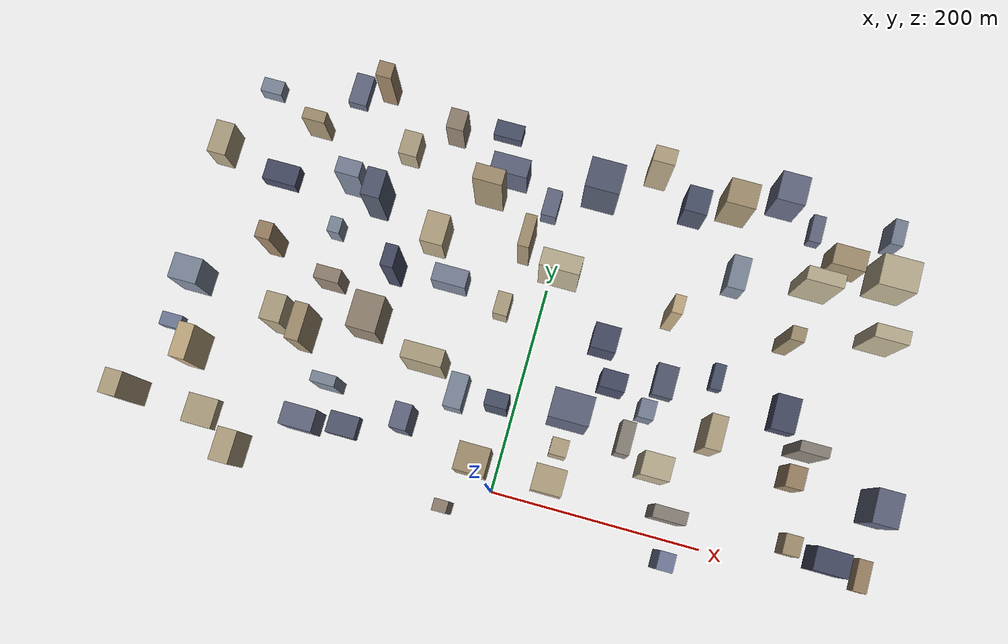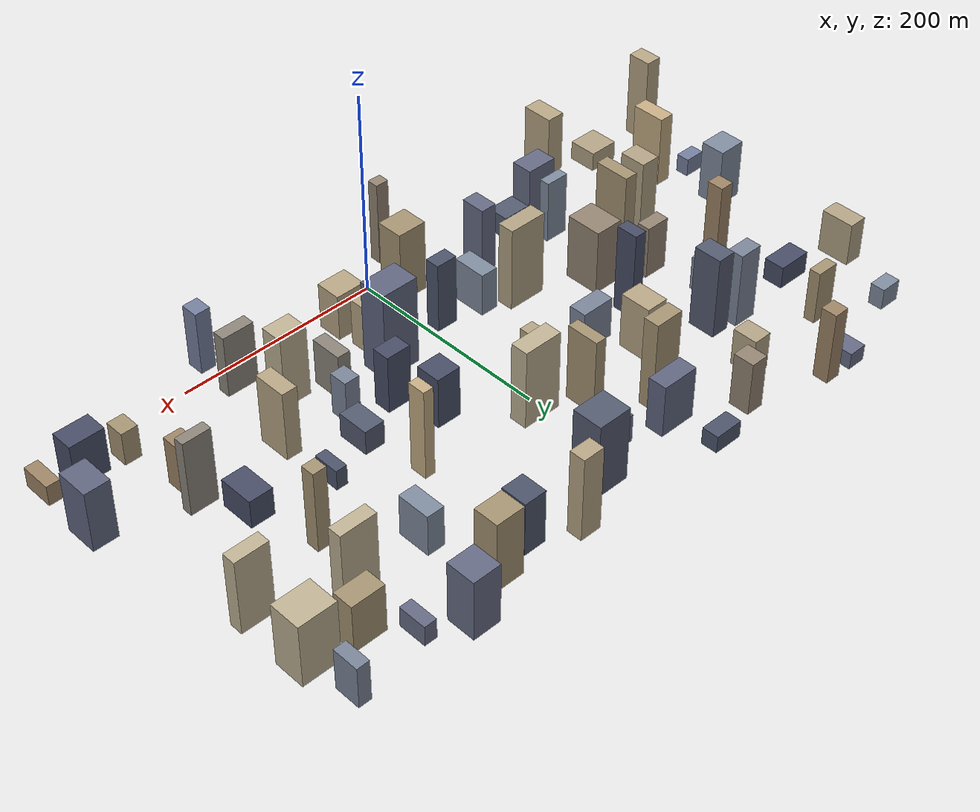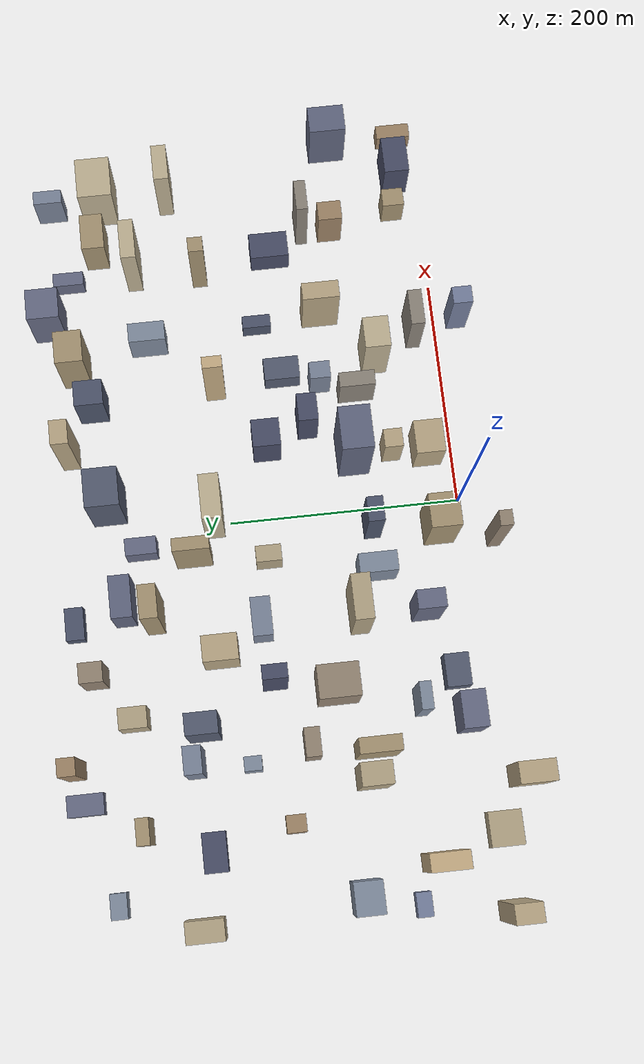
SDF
<sdf version="1.9">
 <model name="city_buildings">
  <static>true</static>
  <model name="b2">
   <static>true</static>
   <pose>160.3 21.6 30.9 0 0 0</pose>
   <link name="link">
    <collision name="c"><geometry><box><size>31 12 62</size></box></geometry></collision>
    <visual name="v">
     <geometry><box><size>31 12 62</size></box></geometry>
     <material>
      <ambient>0.55 0.52 0.48 1</ambient>
      <diffuse>0.55 0.52 0.48 1</diffuse>
      <specular>0.18 0.18 0.16 1</specular>
     </material>
    </visual>
   </link>
  </model>
  <model name="b3">
   <static>true</static>
   <pose>-54.9 79.3 21.5 0 0 0</pose>
   <link name="link">
    <collision name="c"><geometry><box><size>17 33 43</size></box></geometry></collision>
    <visual name="v">
     <geometry><box><size>17 33 43</size></box></geometry>
     <material>
      <ambient>0.50 0.55 0.62 1</ambient>
      <diffuse>0.50 0.55 0.62 1</diffuse>
      <specular>0.45 0.48 0.52 1</specular>
     </material>
    </visual>
   </link>
  </model>
  <model name="b5">
   <static>true</static>
   <pose>312.8 20.1 22.6 0 0 0</pose>
   <link name="link">
    <collision name="c"><geometry><box><size>33 22 45</size></box></geometry></collision>
    <visual name="v">
     <geometry><box><size>33 22 45</size></box></geometry>
     <material>
      <ambient>0.28 0.30 0.40 1</ambient>
      <diffuse>0.28 0.30 0.40 1</diffuse>
      <specular>0.62 0.64 0.68 1</specular>
     </material>
    </visual>
   </link>
  </model>
  <model name="b7">
   <static>true</static>
   <pose>73.9 333.7 42.0 0 0 0</pose>
   <link name="link">
    <collision name="c"><geometry><box><size>21 15 84</size></box></geometry></collision>
    <visual name="v">
     <geometry><box><size>21 15 84</size></box></geometry>
     <material>
      <ambient>0.72 0.65 0.52 1</ambient>
      <diffuse>0.72 0.65 0.52 1</diffuse>
      <specular>0.12 0.10 0.08 1</specular>
     </material>
    </visual>
   </link>
  </model>
  <model name="b11">
   <static>true</static>
   <pose>-209.4 201.1 17.2 0 0 0</pose>
   <link name="link">
    <collision name="c"><geometry><box><size>12 15 34</size></box></geometry></collision>
    <visual name="v">
     <geometry><box><size>12 15 34</size></box></geometry>
     <material>
      <ambient>0.50 0.55 0.62 1</ambient>
      <diffuse>0.50 0.55 0.62 1</diffuse>
      <specular>0.45 0.48 0.52 1</specular>
     </material>
    </visual>
   </link>
  </model>
  <model name="b14">
   <static>true</static>
   <pose>-63.1 296.9 26.2 0 0 0</pose>
   <link name="link">
    <collision name="c"><geometry><box><size>36 18 52</size></box></geometry></collision>
    <visual name="v">
     <geometry><box><size>36 18 52</size></box></geometry>
     <material>
      <ambient>0.38 0.40 0.50 1</ambient>
      <diffuse>0.38 0.40 0.50 1</diffuse>
      <specular>0.52 0.54 0.58 1</specular>
     </material>
    </visual>
   </link>
  </model>
  <model name="b16">
   <static>true</static>
   <pose>-114.3 218.7 27.5 0 0 0</pose>
   <link name="link">
    <collision name="c"><geometry><box><size>22 30 55</size></box></geometry></collision>
    <visual name="v">
     <geometry><box><size>22 30 55</size></box></geometry>
     <material>
      <ambient>0.72 0.65 0.52 1</ambient>
      <diffuse>0.72 0.65 0.52 1</diffuse>
      <specular>0.12 0.10 0.08 1</specular>
     </material>
    </visual>
   </link>
  </model>
  <model name="b17">
   <static>true</static>
   <pose>265.7 296.1 24.1 0 0 0</pose>
   <link name="link">
    <collision name="c"><geometry><box><size>32 20 48</size></box></geometry></collision>
    <visual name="v">
     <geometry><box><size>32 20 48</size></box></geometry>
     <material>
      <ambient>0.65 0.58 0.45 1</ambient>
      <diffuse>0.65 0.58 0.45 1</diffuse>
      <specular>0.10 0.09 0.07 1</specular>
     </material>
    </visual>
   </link>
  </model>
  <model name="b19">
   <static>true</static>
   <pose>-142.5 176.1 43.6 0 0 0</pose>
   <link name="link">
    <collision name="c"><geometry><box><size>12 21 87</size></box></geometry></collision>
    <visual name="v">
     <geometry><box><size>12 21 87</size></box></geometry>
     <material>
      <ambient>0.28 0.30 0.40 1</ambient>
      <diffuse>0.28 0.30 0.40 1</diffuse>
      <specular>0.62 0.64 0.68 1</specular>
     </material>
    </visual>
   </link>
  </model>
  <model name="b21">
   <static>true</static>
   <pose>-152.4 124.8 32.5 0 0 0</pose>
   <link name="link">
    <collision name="c"><geometry><box><size>28 35 65</size></box></geometry></collision>
    <visual name="v">
     <geometry><box><size>28 35 65</size></box></geometry>
     <material>
      <ambient>0.58 0.52 0.45 1</ambient>
      <diffuse>0.58 0.52 0.45 1</diffuse>
      <specular>0.14 0.12 0.10 1</specular>
     </material>
    </visual>
   </link>
  </model>
  <model name="b24">
   <static>true</static>
   <pose>170.1 256.4 20.5 0 0 0</pose>
   <link name="link">
    <collision name="c"><geometry><box><size>17 32 41</size></box></geometry></collision>
    <visual name="v">
     <geometry><box><size>17 32 41</size></box></geometry>
     <material>
      <ambient>0.50 0.55 0.62 1</ambient>
      <diffuse>0.50 0.55 0.62 1</diffuse>
      <specular>0.45 0.48 0.52 1</specular>
     </material>
    </visual>
   </link>
  </model>
  <model name="b25">
   <static>true</static>
   <pose>-347.5 1.2 43.1 0 0 0</pose>
   <link name="link">
    <collision name="c"><geometry><box><size>16 23 86</size></box></geometry></collision>
    <visual name="v">
     <geometry><box><size>16 23 86</size></box></geometry>
     <material>
      <ambient>0.72 0.65 0.52 1</ambient>
      <diffuse>0.72 0.65 0.52 1</diffuse>
      <specular>0.12 0.10 0.08 1</specular>
     </material>
    </visual>
   </link>
  </model>
  <model name="b26">
   <static>true</static>
   <pose>7.8 214.1 39.4 0 0 0</pose>
   <link name="link">
    <collision name="c"><geometry><box><size>38 17 79</size></box></geometry></collision>
    <visual name="v">
     <geometry><box><size>38 17 79</size></box></geometry>
     <material>
      <ambient>0.75 0.70 0.58 1</ambient>
      <diffuse>0.75 0.70 0.58 1</diffuse>
      <specular>0.12 0.11 0.09 1</specular>
     </material>
    </visual>
   </link>
  </model>
  <model name="b27">
   <static>true</static>
   <pose>-22.4 21.7 36.2 0 0 0</pose>
   <link name="link">
    <collision name="c"><geometry><box><size>29 26 72</size></box></geometry></collision>
    <visual name="v">
     <geometry><box><size>29 26 72</size></box></geometry>
     <material>
      <ambient>0.65 0.58 0.45 1</ambient>
      <diffuse>0.65 0.58 0.45 1</diffuse>
      <specular>0.10 0.09 0.07 1</specular>
     </material>
    </visual>
   </link>
  </model>
  <model name="b31">
   <static>true</static>
   <pose>245.2 141.3 14.2 0 0 0</pose>
   <link name="link">
    <collision name="c"><geometry><box><size>23 34 28</size></box></geometry></collision>
    <visual name="v">
     <geometry><box><size>23 34 28</size></box></geometry>
     <material>
      <ambient>0.28 0.30 0.40 1</ambient>
      <diffuse>0.28 0.30 0.40 1</diffuse>
      <specular>0.62 0.64 0.68 1</specular>
     </material>
    </visual>
   </link>
  </model>
  <model name="b33">
   <static>true</static>
   <pose>51.0 88.1 44.3 0 0 0</pose>
   <link name="link">
    <collision name="c"><geometry><box><size>37 27 89</size></box></geometry></collision>
    <visual name="v">
     <geometry><box><size>37 27 89</size></box></geometry>
     <material>
      <ambient>0.38 0.40 0.50 1</ambient>
      <diffuse>0.38 0.40 0.50 1</diffuse>
      <specular>0.52 0.54 0.58 1</specular>
     </material>
    </visual>
   </link>
  </model>
  <model name="b34">
   <static>true</static>
   <pose>348.0 16.2 10.2 0 0 0</pose>
   <link name="link">
    <collision name="c"><geometry><box><size>13 30 20</size></box></geometry></collision>
    <visual name="v">
     <geometry><box><size>13 30 20</size></box></geometry>
     <material>
      <ambient>0.62 0.52 0.40 1</ambient>
      <diffuse>0.62 0.52 0.40 1</diffuse>
      <specular>0.12 0.10 0.08 1</specular>
     </material>
    </visual>
   </link>
  </model>
  <model name="b35">
   <static>true</static>
   <pose>48.7 23.1 23.0 0 0 0</pose>
   <link name="link">
    <collision name="c"><geometry><box><size>29 25 46</size></box></geometry></collision>
    <visual name="v">
     <geometry><box><size>29 25 46</size></box></geometry>
     <material>
      <ambient>0.72 0.65 0.52 1</ambient>
      <diffuse>0.72 0.65 0.52 1</diffuse>
      <specular>0.12 0.10 0.08 1</specular>
     </material>
    </visual>
   </link>
  </model>
  <model name="b36">
   <static>true</static>
   <pose>-254.7 294.0 26.7 0 0 0</pose>
   <link name="link">
    <collision name="c"><geometry><box><size>22 11 53</size></box></geometry></collision>
    <visual name="v">
     <geometry><box><size>22 11 53</size></box></geometry>
     <material>
      <ambient>0.65 0.58 0.45 1</ambient>
      <diffuse>0.65 0.58 0.45 1</diffuse>
      <specular>0.10 0.09 0.07 1</specular>
     </material>
    </visual>
   </link>
  </model>
  <model name="b37">
   <static>true</static>
   <pose>-94.4 41.8 33.8 0 0 0</pose>
   <link name="link">
    <collision name="c"><geometry><box><size>16 24 68</size></box></geometry></collision>
    <visual name="v">
     <geometry><box><size>16 24 68</size></box></geometry>
     <material>
      <ambient>0.40 0.42 0.52 1</ambient>
      <diffuse>0.40 0.42 0.52 1</diffuse>
      <specular>0.50 0.52 0.56 1</specular>
     </material>
    </visual>
   </link>
  </model>
  <model name="b39">
   <static>true</static>
   <pose>181.4 102.6 34.4 0 0 0</pose>
   <link name="link">
    <collision name="c"><geometry><box><size>15 32 69</size></box></geometry></collision>
    <visual name="v">
     <geometry><box><size>15 32 69</size></box></geometry>
     <material>
      <ambient>0.72 0.65 0.52 1</ambient>
      <diffuse>0.72 0.65 0.52 1</diffuse>
      <specular>0.12 0.10 0.08 1</specular>
     </material>
    </visual>
   </link>
  </model>
  <model name="b41">
   <static>true</static>
   <pose>197.9 342.9 30.1 0 0 0</pose>
   <link name="link">
    <collision name="c"><geometry><box><size>27 28 60</size></box></geometry></collision>
    <visual name="v">
     <geometry><box><size>27 28 60</size></box></geometry>
     <material>
      <ambient>0.40 0.42 0.52 1</ambient>
      <diffuse>0.40 0.42 0.52 1</diffuse>
      <specular>0.50 0.52 0.56 1</specular>
     </material>
    </visual>
   </link>
  </model>
  <model name="b46">
   <static>true</static>
   <pose>-171.8 55.8 31.6 0 0 0</pose>
   <link name="link">
    <collision name="c"><geometry><box><size>23 10 63</size></box></geometry></collision>
    <visual name="v">
     <geometry><box><size>23 10 63</size></box></geometry>
     <material>
      <ambient>0.50 0.55 0.62 1</ambient>
      <diffuse>0.50 0.55 0.62 1</diffuse>
      <specular>0.45 0.48 0.52 1</specular>
     </material>
    </visual>
   </link>
  </model>
  <model name="b47">
   <static>true</static>
   <pose>305.9 333.7 20.3 0 0 0</pose>
   <link name="link">
    <collision name="c"><geometry><box><size>12 25 41</size></box></geometry></collision>
    <visual name="v">
     <geometry><box><size>12 25 41</size></box></geometry>
     <material>
      <ambient>0.48 0.52 0.60 1</ambient>
      <diffuse>0.48 0.52 0.60 1</diffuse>
      <specular>0.50 0.52 0.55 1</specular>
     </material>
    </visual>
   </link>
  </model>
  <model name="b48">
   <static>true</static>
   <pose>-15.3 78.6 35.0 0 0 0</pose>
   <link name="link">
    <collision name="c"><geometry><box><size>21 14 70</size></box></geometry></collision>
    <visual name="v">
     <geometry><box><size>21 14 70</size></box></geometry>
     <material>
      <ambient>0.30 0.33 0.42 1</ambient>
      <diffuse>0.30 0.33 0.42 1</diffuse>
      <specular>0.60 0.62 0.65 1</specular>
     </material>
    </visual>
   </link>
  </model>
  <model name="b49">
   <static>true</static>
   <pose>-204.1 248.3 37.5 0 0 0</pose>
   <link name="link">
    <collision name="c"><geometry><box><size>23 15 75</size></box></geometry></collision>
    <visual name="v">
     <geometry><box><size>23 15 75</size></box></geometry>
     <material>
      <ambient>0.48 0.52 0.60 1</ambient>
      <diffuse>0.48 0.52 0.60 1</diffuse>
      <specular>0.50 0.52 0.55 1</specular>
     </material>
    </visual>
   </link>
  </model>
  <model name="b50">
   <static>true</static>
   <pose>-17.2 278.2 13.8 0 0 0</pose>
   <link name="link">
    <collision name="c"><geometry><box><size>15 27 28</size></box></geometry></collision>
    <visual name="v">
     <geometry><box><size>15 27 28</size></box></geometry>
     <material>
      <ambient>0.40 0.42 0.52 1</ambient>
      <diffuse>0.40 0.42 0.52 1</diffuse>
      <specular>0.50 0.52 0.56 1</specular>
     </material>
    </visual>
   </link>
  </model>
  <model name="b51">
   <static>true</static>
   <pose>-185.7 17.1 27.2 0 0 0</pose>
   <link name="link">
    <collision name="c"><geometry><box><size>31 21 54</size></box></geometry></collision>
    <visual name="v">
     <geometry><box><size>31 21 54</size></box></geometry>
     <material>
      <ambient>0.40 0.42 0.52 1</ambient>
      <diffuse>0.40 0.42 0.52 1</diffuse>
      <specular>0.50 0.52 0.56 1</specular>
     </material>
    </visual>
   </link>
  </model>
  <model name="b54">
   <static>true</static>
   <pose>-162.2 296.2 18.6 0 0 0</pose>
   <link name="link">
    <collision name="c"><geometry><box><size>18 24 37</size></box></geometry></collision>
    <visual name="v">
     <geometry><box><size>18 24 37</size></box></geometry>
     <material>
      <ambient>0.70 0.64 0.52 1</ambient>
      <diffuse>0.70 0.64 0.52 1</diffuse>
      <specular>0.13 0.11 0.09 1</specular>
     </material>
    </visual>
   </link>
  </model>
  <model name="b56">
   <static>true</static>
   <pose>-311.0 320.8 10.4 0 0 0</pose>
   <link name="link">
    <collision name="c"><geometry><box><size>21 14 21</size></box></geometry></collision>
    <visual name="v">
     <geometry><box><size>21 14 21</size></box></geometry>
     <material>
      <ambient>0.50 0.55 0.62 1</ambient>
      <diffuse>0.50 0.55 0.62 1</diffuse>
      <specular>0.45 0.48 0.52 1</specular>
     </material>
    </visual>
   </link>
  </model>
  <model name="b60">
   <static>true</static>
   <pose>263.4 84.9 24.2 0 0 0</pose>
   <link name="link">
    <collision name="c"><geometry><box><size>17 21 48</size></box></geometry></collision>
    <visual name="v">
     <geometry><box><size>17 21 48</size></box></geometry>
     <material>
      <ambient>0.62 0.52 0.40 1</ambient>
      <diffuse>0.62 0.52 0.40 1</diffuse>
      <specular>0.12 0.10 0.08 1</specular>
     </material>
    </visual>
   </link>
  </model>
  <model name="b64">
   <static>true</static>
   <pose>268.2 110.4 37.5 0 0 0</pose>
   <link name="link">
    <collision name="c"><geometry><box><size>27 10 75</size></box></geometry></collision>
    <visual name="v">
     <geometry><box><size>27 10 75</size></box></geometry>
     <material>
      <ambient>0.55 0.52 0.48 1</ambient>
      <diffuse>0.55 0.52 0.48 1</diffuse>
      <specular>0.18 0.18 0.16 1</specular>
     </material>
    </visual>
   </link>
  </model>
  <model name="b65">
   <static>true</static>
   <pose>-207.4 98.1 38.6 0 0 0</pose>
   <link name="link">
    <collision name="c"><geometry><box><size>13 35 77</size></box></geometry></collision>
    <visual name="v">
     <geometry><box><size>13 35 77</size></box></geometry>
     <material>
      <ambient>0.65 0.58 0.45 1</ambient>
      <diffuse>0.65 0.58 0.45 1</diffuse>
      <specular>0.10 0.09 0.07 1</specular>
     </material>
    </visual>
   </link>
  </model>
  <model name="b67">
   <static>true</static>
   <pose>-276.7 239.3 11.1 0 0 0</pose>
   <link name="link">
    <collision name="c"><geometry><box><size>33 20 22</size></box></geometry></collision>
    <visual name="v">
     <geometry><box><size>33 20 22</size></box></geometry>
     <material>
      <ambient>0.28 0.30 0.40 1</ambient>
      <diffuse>0.28 0.30 0.40 1</diffuse>
      <specular>0.62 0.64 0.68 1</specular>
     </material>
    </visual>
   </link>
  </model>
  <model name="b68">
   <static>true</static>
   <pose>177.1 159.3 10.1 0 0 0</pose>
   <link name="link">
    <collision name="c"><geometry><box><size>11 25 20</size></box></geometry></collision>
    <visual name="v">
     <geometry><box><size>11 25 20</size></box></geometry>
     <material>
      <ambient>0.30 0.33 0.42 1</ambient>
      <diffuse>0.30 0.33 0.42 1</diffuse>
      <specular>0.60 0.62 0.65 1</specular>
     </material>
    </visual>
   </link>
  </model>
  <model name="b69">
   <static>true</static>
   <pose>-76.2 271.9 44.9 0 0 0</pose>
   <link name="link">
    <collision name="c"><geometry><box><size>28 15 90</size></box></geometry></collision>
    <visual name="v">
     <geometry><box><size>28 15 90</size></box></geometry>
     <material>
      <ambient>0.65 0.58 0.45 1</ambient>
      <diffuse>0.65 0.58 0.45 1</diffuse>
      <specular>0.10 0.09 0.07 1</specular>
     </material>
    </visual>
   </link>
  </model>
  <model name="b74">
   <static>true</static>
   <pose>-123.5 326.0 26.4 0 0 0</pose>
   <link name="link">
    <collision name="c"><geometry><box><size>17 20 53</size></box></geometry></collision>
    <visual name="v">
     <geometry><box><size>17 20 53</size></box></geometry>
     <material>
      <ambient>0.58 0.52 0.45 1</ambient>
      <diffuse>0.58 0.52 0.45 1</diffuse>
      <specular>0.14 0.12 0.10 1</specular>
     </material>
    </visual>
   </link>
  </model>
  <model name="b75">
   <static>true</static>
   <pose>310.3 289.8 31.1 0 0 0</pose>
   <link name="link">
    <collision name="c"><geometry><box><size>36 30 62</size></box></geometry></collision>
    <visual name="v">
     <geometry><box><size>36 30 62</size></box></geometry>
     <material>
      <ambient>0.75 0.70 0.58 1</ambient>
      <diffuse>0.75 0.70 0.58 1</diffuse>
      <specular>0.12 0.11 0.09 1</specular>
     </material>
    </visual>
   </link>
  </model>
  <model name="b76">
   <static>true</static>
   <pose>152.9 322.4 34.8 0 0 0</pose>
   <link name="link">
    <collision name="c"><geometry><box><size>28 24 70</size></box></geometry></collision>
    <visual name="v">
     <geometry><box><size>28 24 70</size></box></geometry>
     <material>
      <ambient>0.65 0.58 0.45 1</ambient>
      <diffuse>0.65 0.58 0.45 1</diffuse>
      <specular>0.10 0.09 0.07 1</specular>
     </material>
    </visual>
   </link>
  </model>
  <model name="b77">
   <static>true</static>
   <pose>-335.6 74.1 9.2 0 0 0</pose>
   <link name="link">
    <collision name="c"><geometry><box><size>20 13 18</size></box></geometry></collision>
    <visual name="v">
     <geometry><box><size>20 13 18</size></box></geometry>
     <material>
      <ambient>0.46 0.50 0.62 1</ambient>
      <diffuse>0.46 0.50 0.62 1</diffuse>
      <specular>0.48 0.50 0.55 1</specular>
     </material>
    </visual>
   </link>
  </model>
  <model name="b79">
   <static>true</static>
   <pose>-89.2 99.1 41.9 0 0 0</pose>
   <link name="link">
    <collision name="c"><geometry><box><size>38 16 84</size></box></geometry></collision>
    <visual name="v">
     <geometry><box><size>38 16 84</size></box></geometry>
     <material>
      <ambient>0.70 0.64 0.52 1</ambient>
      <diffuse>0.70 0.64 0.52 1</diffuse>
      <specular>0.13 0.11 0.09 1</specular>
     </material>
    </visual>
   </link>
  </model>
  <model name="b84">
   <static>true</static>
   <pose>-29.7 234.0 38.1 0 0 0</pose>
   <link name="link">
    <collision name="c"><geometry><box><size>11 31 76</size></box></geometry></collision>
    <visual name="v">
     <geometry><box><size>11 31 76</size></box></geometry>
     <material>
      <ambient>0.65 0.58 0.45 1</ambient>
      <diffuse>0.65 0.58 0.45 1</diffuse>
      <specular>0.10 0.09 0.07 1</specular>
     </material>
    </visual>
   </link>
  </model>
  <model name="b85">
   <static>true</static>
   <pose>-90.0 181.8 20.6 0 0 0</pose>
   <link name="link">
    <collision name="c"><geometry><box><size>33 17 41</size></box></geometry></collision>
    <visual name="v">
     <geometry><box><size>33 17 41</size></box></geometry>
     <material>
      <ambient>0.48 0.52 0.60 1</ambient>
      <diffuse>0.48 0.52 0.60 1</diffuse>
      <specular>0.50 0.52 0.55 1</specular>
     </material>
    </visual>
   </link>
  </model>
  <model name="b89">
   <static>true</static>
   <pose>-241.0 -25.4 31.1 0 0 0</pose>
   <link name="link">
    <collision name="c"><geometry><box><size>18 31 62</size></box></geometry></collision>
    <visual name="v">
     <geometry><box><size>18 31 62</size></box></geometry>
     <material>
      <ambient>0.72 0.65 0.52 1</ambient>
      <diffuse>0.72 0.65 0.52 1</diffuse>
      <specular>0.12 0.10 0.08 1</specular>
     </material>
    </visual>
   </link>
  </model>
  <model name="b94">
   <static>true</static>
   <pose>-37.3 -25.2 42.0 0 0 0</pose>
   <link name="link">
    <collision name="c"><geometry><box><size>13 11 84</size></box></geometry></collision>
    <visual name="v">
     <geometry><box><size>13 11 84</size></box></geometry>
     <material>
      <ambient>0.58 0.52 0.45 1</ambient>
      <diffuse>0.58 0.52 0.45 1</diffuse>
      <specular>0.14 0.12 0.10 1</specular>
     </material>
    </visual>
   </link>
  </model>
  <model name="b95">
   <static>true</static>
   <pose>312.6 229.8 36.9 0 0 0</pose>
   <link name="link">
    <collision name="c"><geometry><box><size>32 13 74</size></box></geometry></collision>
    <visual name="v">
     <geometry><box><size>32 13 74</size></box></geometry>
     <material>
      <ambient>0.75 0.70 0.58 1</ambient>
      <diffuse>0.75 0.70 0.58 1</diffuse>
      <specular>0.12 0.11 0.09 1</specular>
     </material>
    </visual>
   </link>
  </model>
  <model name="b96">
   <static>true</static>
   <pose>-261.6 171.3 36.3 0 0 0</pose>
   <link name="link">
    <collision name="c"><geometry><box><size>14 16 73</size></box></geometry></collision>
    <visual name="v">
     <geometry><box><size>14 16 73</size></box></geometry>
     <material>
      <ambient>0.62 0.52 0.40 1</ambient>
      <diffuse>0.62 0.52 0.40 1</diffuse>
      <specular>0.12 0.10 0.08 1</specular>
     </material>
    </visual>
   </link>
  </model>
  <model name="b103">
   <static>true</static>
   <pose>234.6 323.0 10.2 0 0 0</pose>
   <link name="link">
    <collision name="c"><geometry><box><size>12 27 20</size></box></geometry></collision>
    <visual name="v">
     <geometry><box><size>12 27 20</size></box></geometry>
     <material>
      <ambient>0.40 0.42 0.52 1</ambient>
      <diffuse>0.40 0.42 0.52 1</diffuse>
      <specular>0.50 0.52 0.56 1</specular>
     </material>
    </visual>
   </link>
  </model>
  <model name="b106">
   <static>true</static>
   <pose>119.0 109.5 20.8 0 0 0</pose>
   <link name="link">
    <collision name="c"><geometry><box><size>15 18 42</size></box></geometry></collision>
    <visual name="v">
     <geometry><box><size>15 18 42</size></box></geometry>
     <material>
      <ambient>0.48 0.52 0.60 1</ambient>
      <diffuse>0.48 0.52 0.60 1</diffuse>
      <specular>0.50 0.52 0.55 1</specular>
     </material>
    </visual>
   </link>
  </model>
  <model name="b110">
   <static>true</static>
   <pose>-227.7 342.4 8.1 0 0 0</pose>
   <link name="link">
    <collision name="c"><geometry><box><size>18 31 16</size></box></geometry></collision>
    <visual name="v">
     <geometry><box><size>18 31 16</size></box></geometry>
     <material>
      <ambient>0.40 0.42 0.52 1</ambient>
      <diffuse>0.40 0.42 0.52 1</diffuse>
      <specular>0.50 0.52 0.56 1</specular>
     </material>
    </visual>
   </link>
  </model>
  <model name="b111">
   <static>true</static>
   <pose>-336.7 252.2 21.4 0 0 0</pose>
   <link name="link">
    <collision name="c"><geometry><box><size>18 32 43</size></box></geometry></collision>
    <visual name="v">
     <geometry><box><size>18 32 43</size></box></geometry>
     <material>
      <ambient>0.70 0.64 0.52 1</ambient>
      <diffuse>0.70 0.64 0.52 1</diffuse>
      <specular>0.13 0.11 0.09 1</specular>
     </material>
    </visual>
   </link>
  </model>
  <model name="b112">
   <static>true</static>
   <pose>106.3 78.6 23.1 0 0 0</pose>
   <link name="link">
    <collision name="c"><geometry><box><size>13 31 46</size></box></geometry></collision>
    <visual name="v">
     <geometry><box><size>13 31 46</size></box></geometry>
     <material>
      <ambient>0.55 0.52 0.48 1</ambient>
      <diffuse>0.55 0.52 0.48 1</diffuse>
      <specular>0.18 0.18 0.16 1</specular>
     </material>
    </visual>
   </link>
  </model>
  <model name="b113">
   <static>true</static>
   <pose>81.9 124.8 29.2 0 0 0</pose>
   <link name="link">
    <collision name="c"><geometry><box><size>24 17 58</size></box></geometry></collision>
    <visual name="v">
     <geometry><box><size>24 17 58</size></box></geometry>
     <material>
      <ambient>0.28 0.30 0.40 1</ambient>
      <diffuse>0.28 0.30 0.40 1</diffuse>
      <specular>0.62 0.64 0.68 1</specular>
     </material>
    </visual>
   </link>
  </model>
  <model name="b114">
   <static>true</static>
   <pose>26.1 303.7 37.2 0 0 0</pose>
   <link name="link">
    <collision name="c"><geometry><box><size>33 29 74</size></box></geometry></collision>
    <visual name="v">
     <geometry><box><size>33 29 74</size></box></geometry>
     <material>
      <ambient>0.33 0.36 0.44 1</ambient>
      <diffuse>0.33 0.36 0.44 1</diffuse>
      <specular>0.55 0.58 0.62 1</specular>
     </material>
    </visual>
   </link>
  </model>
  <model name="b116">
   <static>true</static>
   <pose>65.1 162.1 25.3 0 0 0</pose>
   <link name="link">
    <collision name="c"><geometry><box><size>24 24 51</size></box></geometry></collision>
    <visual name="v">
     <geometry><box><size>24 24 51</size></box></geometry>
     <material>
      <ambient>0.28 0.30 0.40 1</ambient>
      <diffuse>0.28 0.30 0.40 1</diffuse>
      <specular>0.62 0.64 0.68 1</specular>
     </material>
    </visual>
   </link>
  </model>
  <model name="b117">
   <static>true</static>
   <pose>229.3 205.8 40.5 0 0 0</pose>
   <link name="link">
    <collision name="c"><geometry><box><size>13 13 81</size></box></geometry></collision>
    <visual name="v">
     <geometry><box><size>13 13 81</size></box></geometry>
     <material>
      <ambient>0.65 0.58 0.45 1</ambient>
      <diffuse>0.65 0.58 0.45 1</diffuse>
      <specular>0.10 0.09 0.07 1</specular>
     </material>
    </visual>
   </link>
  </model>
  <model name="b118">
   <static>true</static>
   <pose>115.4 310.0 27.0 0 0 0</pose>
   <link name="link">
    <collision name="c"><geometry><box><size>22 25 54</size></box></geometry></collision>
    <visual name="v">
     <geometry><box><size>22 25 54</size></box></geometry>
     <material>
      <ambient>0.30 0.33 0.42 1</ambient>
      <diffuse>0.30 0.33 0.42 1</diffuse>
      <specular>0.60 0.62 0.65 1</specular>
     </material>
    </visual>
   </link>
  </model>
  <model name="b119">
   <static>true</static>
   <pose>346.2 78.7 29.9 0 0 0</pose>
   <link name="link">
    <collision name="c"><geometry><box><size>24 32 60</size></box></geometry></collision>
    <visual name="v">
     <geometry><box><size>24 32 60</size></box></geometry>
     <material>
      <ambient>0.38 0.40 0.50 1</ambient>
      <diffuse>0.38 0.40 0.50 1</diffuse>
      <specular>0.52 0.54 0.58 1</specular>
     </material>
    </visual>
   </link>
  </model>
  <model name="b124">
   <static>true</static>
   <pose>-36.0 170.3 17.0 0 0 0</pose>
   <link name="link">
    <collision name="c"><geometry><box><size>14 22 34</size></box></geometry></collision>
    <visual name="v">
     <geometry><box><size>14 22 34</size></box></geometry>
     <material>
      <ambient>0.70 0.64 0.52 1</ambient>
      <diffuse>0.70 0.64 0.52 1</diffuse>
      <specular>0.13 0.11 0.09 1</specular>
     </material>
    </visual>
   </link>
  </model>
  <model name="b126">
   <static>true</static>
   <pose>-230.0 104.1 41.5 0 0 0</pose>
   <link name="link">
    <collision name="c"><geometry><box><size>19 26 83</size></box></geometry></collision>
    <visual name="v">
     <geometry><box><size>19 26 83</size></box></geometry>
     <material>
      <ambient>0.70 0.64 0.52 1</ambient>
      <diffuse>0.70 0.64 0.52 1</diffuse>
      <specular>0.13 0.11 0.09 1</specular>
     </material>
    </visual>
   </link>
  </model>
  <model name="b127">
   <static>true</static>
   <pose>137.8 59.4 35.8 0 0 0</pose>
   <link name="link">
    <collision name="c"><geometry><box><size>27 22 72</size></box></geometry></collision>
    <visual name="v">
     <geometry><box><size>27 22 72</size></box></geometry>
     <material>
      <ambient>0.75 0.70 0.58 1</ambient>
      <diffuse>0.75 0.70 0.58 1</diffuse>
      <specular>0.12 0.11 0.09 1</specular>
     </material>
    </visual>
   </link>
  </model>
  <model name="b128">
   <static>true</static>
   <pose>277.2 25.7 16.7 0 0 0</pose>
   <link name="link">
    <collision name="c"><geometry><box><size>16 19 33</size></box></geometry></collision>
    <visual name="v">
     <geometry><box><size>16 19 33</size></box></geometry>
     <material>
      <ambient>0.65 0.58 0.45 1</ambient>
      <diffuse>0.65 0.58 0.45 1</diffuse>
      <specular>0.10 0.09 0.07 1</specular>
     </material>
    </visual>
   </link>
  </model>
  <model name="b129">
   <static>true</static>
   <pose>166.7 -19.2 31.3 0 0 0</pose>
   <link name="link">
    <collision name="c"><geometry><box><size>15 17 63</size></box></geometry></collision>
    <visual name="v">
     <geometry><box><size>15 17 63</size></box></geometry>
     <material>
      <ambient>0.46 0.50 0.62 1</ambient>
      <diffuse>0.46 0.50 0.62 1</diffuse>
      <specular>0.48 0.50 0.55 1</specular>
     </material>
    </visual>
   </link>
  </model>
  <model name="b130">
   <static>true</static>
   <pose>-324.5 120.1 29.6 0 0 0</pose>
   <link name="link">
    <collision name="c"><geometry><box><size>27 24 59</size></box></geometry></collision>
    <visual name="v">
     <geometry><box><size>27 24 59</size></box></geometry>
     <material>
      <ambient>0.50 0.55 0.62 1</ambient>
      <diffuse>0.50 0.55 0.62 1</diffuse>
      <specular>0.45 0.48 0.52 1</specular>
     </material>
    </visual>
   </link>
  </model>
  <model name="b131">
   <static>true</static>
   <pose>-198.4 150.9 26.3 0 0 0</pose>
   <link name="link">
    <collision name="c"><geometry><box><size>24 13 53</size></box></geometry></collision>
    <visual name="v">
     <geometry><box><size>24 13 53</size></box></geometry>
     <material>
      <ambient>0.58 0.52 0.45 1</ambient>
      <diffuse>0.58 0.52 0.45 1</diffuse>
      <specular>0.14 0.12 0.10 1</specular>
     </material>
    </visual>
   </link>
  </model>
  <model name="b133">
   <static>true</static>
   <pose>-282.6 -0.3 9.5 0 0 0</pose>
   <link name="link">
    <collision name="c"><geometry><box><size>29 28 19</size></box></geometry></collision>
    <visual name="v">
     <geometry><box><size>29 28 19</size></box></geometry>
     <material>
      <ambient>0.70 0.64 0.52 1</ambient>
      <diffuse>0.70 0.64 0.52 1</diffuse>
      <specular>0.13 0.11 0.09 1</specular>
     </material>
    </visual>
   </link>
  </model>
  <model name="b135">
   <static>true</static>
   <pose>-302.9 54.4 36.1 0 0 0</pose>
   <link name="link">
    <collision name="c"><geometry><box><size>15 33 72</size></box></geometry></collision>
    <visual name="v">
     <geometry><box><size>15 33 72</size></box></geometry>
     <material>
      <ambient>0.78 0.68 0.52 1</ambient>
      <diffuse>0.78 0.68 0.52 1</diffuse>
      <specular>0.10 0.09 0.07 1</specular>
     </material>
    </visual>
   </link>
  </model>
  <model name="b136">
   <static>true</static>
   <pose>-149.5 22.4 11.5 0 0 0</pose>
   <link name="link">
    <collision name="c"><geometry><box><size>28 21 23</size></box></geometry></collision>
    <visual name="v">
     <geometry><box><size>28 21 23</size></box></geometry>
     <material>
      <ambient>0.33 0.36 0.44 1</ambient>
      <diffuse>0.33 0.36 0.44 1</diffuse>
      <specular>0.55 0.58 0.62 1</specular>
     </material>
    </visual>
   </link>
  </model>
  <model name="b139">
   <static>true</static>
   <pose>50.0 54.1 23.6 0 0 0</pose>
   <link name="link">
    <collision name="c"><geometry><box><size>16 16 47</size></box></geometry></collision>
    <visual name="v">
     <geometry><box><size>16 16 47</size></box></geometry>
     <material>
      <ambient>0.72 0.65 0.52 1</ambient>
      <diffuse>0.72 0.65 0.52 1</diffuse>
      <specular>0.12 0.10 0.08 1</specular>
     </material>
    </visual>
   </link>
  </model>
  <model name="b141">
   <static>true</static>
   <pose>-176.5 238.6 40.9 0 0 0</pose>
   <link name="link">
    <collision name="c"><geometry><box><size>18 27 82</size></box></geometry></collision>
    <visual name="v">
     <geometry><box><size>18 27 82</size></box></geometry>
     <material>
      <ambient>0.33 0.36 0.44 1</ambient>
      <diffuse>0.33 0.36 0.44 1</diffuse>
      <specular>0.55 0.58 0.62 1</specular>
     </material>
    </visual>
   </link>
  </model>
  <model name="b144">
   <static>true</static>
   <pose>-76.5 340.3 8.5 0 0 0</pose>
   <link name="link">
    <collision name="c"><geometry><box><size>28 16 17</size></box></geometry></collision>
    <visual name="v">
     <geometry><box><size>28 16 17</size></box></geometry>
     <material>
      <ambient>0.30 0.33 0.42 1</ambient>
      <diffuse>0.30 0.33 0.42 1</diffuse>
      <specular>0.60 0.62 0.65 1</specular>
     </material>
    </visual>
   </link>
  </model>
  <model name="b145">
   <static>true</static>
   <pose>130.0 141.8 12.0 0 0 0</pose>
   <link name="link">
    <collision name="c"><geometry><box><size>20 31 24</size></box></geometry></collision>
    <visual name="v">
     <geometry><box><size>20 31 24</size></box></geometry>
     <material>
      <ambient>0.33 0.36 0.44 1</ambient>
      <diffuse>0.33 0.36 0.44 1</diffuse>
      <specular>0.55 0.58 0.62 1</specular>
     </material>
    </visual>
   </link>
  </model>
  <model name="b146">
   <static>true</static>
   <pose>-199.0 348.6 35.9 0 0 0</pose>
   <link name="link">
    <collision name="c"><geometry><box><size>15 15 72</size></box></geometry></collision>
    <visual name="v">
     <geometry><box><size>15 15 72</size></box></geometry>
     <material>
      <ambient>0.62 0.52 0.40 1</ambient>
      <diffuse>0.62 0.52 0.40 1</diffuse>
      <specular>0.12 0.10 0.08 1</specular>
     </material>
    </visual>
   </link>
  </model>
  <model name="b147">
   <static>true</static>
   <pose>242.5 264.1 38.7 0 0 0</pose>
   <link name="link">
    <collision name="c"><geometry><box><size>35 13 77</size></box></geometry></collision>
    <visual name="v">
     <geometry><box><size>35 13 77</size></box></geometry>
     <material>
      <ambient>0.75 0.70 0.58 1</ambient>
      <diffuse>0.75 0.70 0.58 1</diffuse>
      <specular>0.12 0.11 0.09 1</specular>
     </material>
    </visual>
   </link>
  </model>
  <model name="b149">
   <static>true</static>
   <pose>119.1 201.5 45.0 0 0 0</pose>
   <link name="link">
    <collision name="c"><geometry><box><size>10 17 90</size></box></geometry></collision>
    <visual name="v">
     <geometry><box><size>10 17 90</size></box></geometry>
     <material>
      <ambient>0.78 0.68 0.52 1</ambient>
      <diffuse>0.78 0.68 0.52 1</diffuse>
      <specular>0.10 0.09 0.07 1</specular>
     </material>
    </visual>
   </link>
  </model>
 </model>
</sdf>
